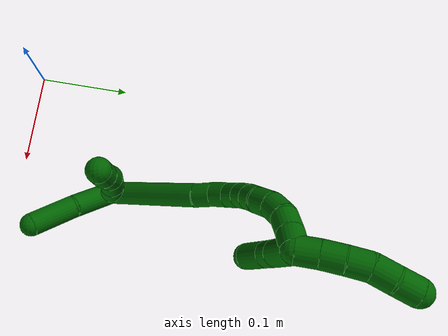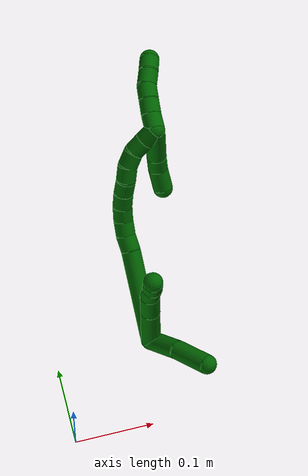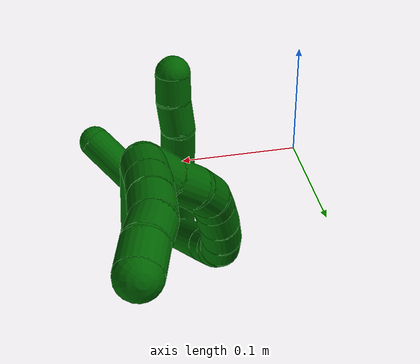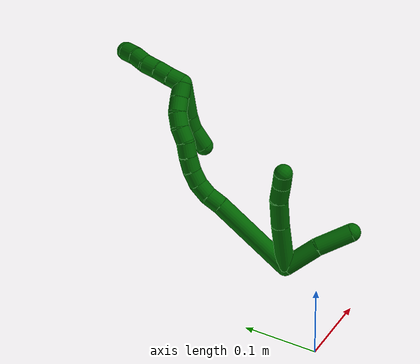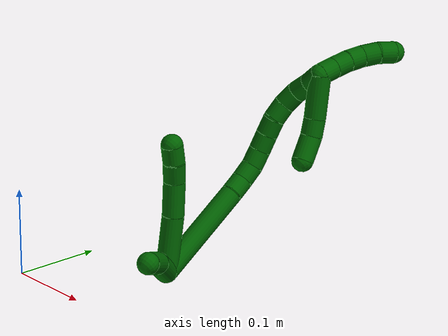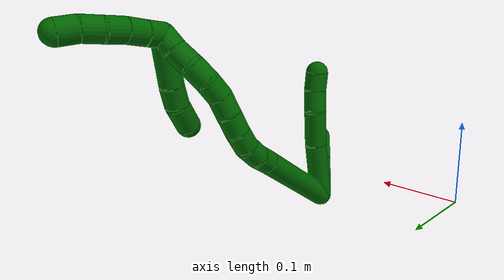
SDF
<sdf version="1.7">
 <world name="default">
  <model name="6">
   <static>0</static>
   <link name="6">
    <collision name="collision-cylinder-e_1_2_8">
     <pose>0.01232 -0.023528 0.019732 0.872918 0.381545 0.179682</pose>
     <geometry><cylinder><radius>0.0125</radius><length>0.066173</length></cylinder></geometry>
     <surface>
      <friction><ode><mu>1.16</mu><mu2>1.16</mu2><slip1>0</slip1><slip2>0</slip2></ode></friction>
      <contact><ode><kp>1e+06</kp><kd>1</kd><max_vel>0</max_vel><min_depth>0.001</min_depth></ode></contact>
     </surface>
    </collision>
    <visual name="visual-cylinder-e_1_2_8">
     <pose>0.01232 -0.023528 0.019732 0.872918 0.381545 0.179682</pose>
     <geometry><cylinder><radius>0.0125</radius><length>0.066173</length></cylinder></geometry>
     <material><ambient>0 0.392157 0.003922 1</ambient></material>
    </visual>
    <collision name="collision-cylinder-e_2_8_9">
     <pose>0.031758 -0.062312 0.050217 0.956822 0.36435 0.190489</pose>
     <geometry><cylinder><radius>0.0125</radius><length>0.039951</length></cylinder></geometry>
     <surface>
      <friction><ode><mu>1.16</mu><mu2>1.16</mu2><slip1>0</slip1><slip2>0</slip2></ode></friction>
      <contact><ode><kp>1e+06</kp><kd>1</kd><max_vel>0</max_vel><min_depth>0.001</min_depth></ode></contact>
     </surface>
    </collision>
    <visual name="visual-cylinder-e_2_8_9">
     <pose>0.031758 -0.062312 0.050217 0.956822 0.36435 0.190489</pose>
     <geometry><cylinder><radius>0.0125</radius><length>0.039951</length></cylinder></geometry>
     <material><ambient>0 0.392157 0.003922 1</ambient></material>
    </visual>
    <collision name="collision-cylinder-e_3_9_10">
     <pose>0.04456 -0.086821 0.065426 1.12204 0.505496 0.321775</pose>
     <geometry><cylinder><radius>0.0125</radius><length>0.023477</length></cylinder></geometry>
     <surface>
      <friction><ode><mu>1.16</mu><mu2>1.16</mu2><slip1>0</slip1><slip2>0</slip2></ode></friction>
      <contact><ode><kp>1e+06</kp><kd>1</kd><max_vel>0</max_vel><min_depth>0.001</min_depth></ode></contact>
     </surface>
    </collision>
    <visual name="visual-cylinder-e_3_9_10">
     <pose>0.04456 -0.086821 0.065426 1.12204 0.505496 0.321775</pose>
     <geometry><cylinder><radius>0.0125</radius><length>0.023477</length></cylinder></geometry>
     <material><ambient>0 0.392157 0.003922 1</ambient></material>
    </visual>
    <collision name="collision-cylinder-e_4_10_6">
     <pose>0.054022 -0.104751 0.073686 1.15758 0.379401 0.249629</pose>
     <geometry><cylinder><radius>0.0125</radius><length>0.020399</length></cylinder></geometry>
     <surface>
      <friction><ode><mu>1.16</mu><mu2>1.16</mu2><slip1>0</slip1><slip2>0</slip2></ode></friction>
      <contact><ode><kp>1e+06</kp><kd>1</kd><max_vel>0</max_vel><min_depth>0.001</min_depth></ode></contact>
     </surface>
    </collision>
    <visual name="visual-cylinder-e_4_10_6">
     <pose>0.054022 -0.104751 0.073686 1.15758 0.379401 0.249629</pose>
     <geometry><cylinder><radius>0.0125</radius><length>0.020399</length></cylinder></geometry>
     <material><ambient>0 0.392157 0.003922 1</ambient></material>
    </visual>
    <collision name="collision-cylinder-e_1_2_11">
     <pose>0.019348 -0.013926 -0.008762 2.13242 0.866089 1.39393</pose>
     <geometry><cylinder><radius>0.0125</radius><length>0.050796</length></cylinder></geometry>
     <surface>
      <friction><ode><mu>1.16</mu><mu2>1.16</mu2><slip1>0</slip1><slip2>0</slip2></ode></friction>
      <contact><ode><kp>1e+06</kp><kd>1</kd><max_vel>0</max_vel><min_depth>0.001</min_depth></ode></contact>
     </surface>
    </collision>
    <visual name="visual-cylinder-e_1_2_11">
     <pose>0.019348 -0.013926 -0.008762 2.13242 0.866089 1.39393</pose>
     <geometry><cylinder><radius>0.0125</radius><length>0.050796</length></cylinder></geometry>
     <material><ambient>0 0.392157 0.003922 1</ambient></material>
    </visual>
    <collision name="collision-cylinder-e_2_11_5">
     <pose>0.057438 -0.038009 -0.029806 2.45058 0.866062 1.81848</pose>
     <geometry><cylinder><radius>0.0125</radius><length>0.049204</length></cylinder></geometry>
     <surface>
      <friction><ode><mu>1.16</mu><mu2>1.16</mu2><slip1>0</slip1><slip2>0</slip2></ode></friction>
      <contact><ode><kp>1e+06</kp><kd>1</kd><max_vel>0</max_vel><min_depth>0.001</min_depth></ode></contact>
     </surface>
    </collision>
    <visual name="visual-cylinder-e_2_11_5">
     <pose>0.057438 -0.038009 -0.029806 2.45058 0.866062 1.81848</pose>
     <geometry><cylinder><radius>0.0125</radius><length>0.049204</length></cylinder></geometry>
     <material><ambient>0 0.392157 0.003922 1</ambient></material>
    </visual>
    <collision name="collision-cylinder-e_1_2_12">
     <pose>0.005368 -0.004571 0.058893 0.077454 0.090623 0.003514</pose>
     <geometry><cylinder><radius>0.0125</radius><length>0.118627</length></cylinder></geometry>
     <surface>
      <friction><ode><mu>1.16</mu><mu2>1.16</mu2><slip1>0</slip1><slip2>0</slip2></ode></friction>
      <contact><ode><kp>1e+06</kp><kd>1</kd><max_vel>0</max_vel><min_depth>0.001</min_depth></ode></contact>
     </surface>
    </collision>
    <visual name="visual-cylinder-e_1_2_12">
     <pose>0.005368 -0.004571 0.058893 0.077454 0.090623 0.003514</pose>
     <geometry><cylinder><radius>0.0125</radius><length>0.118627</length></cylinder></geometry>
     <material><ambient>0 0.392157 0.003922 1</ambient></material>
    </visual>
    <collision name="collision-cylinder-e_2_12_13">
     <pose>0.010592 -0.009808 0.128156 0.064229 -0.013852 -0.000445</pose>
     <geometry><cylinder><radius>0.0125</radius><length>0.020785</length></cylinder></geometry>
     <surface>
      <friction><ode><mu>1.16</mu><mu2>1.16</mu2><slip1>0</slip1><slip2>0</slip2></ode></friction>
      <contact><ode><kp>1e+06</kp><kd>1</kd><max_vel>0</max_vel><min_depth>0.001</min_depth></ode></contact>
     </surface>
    </collision>
    <visual name="visual-cylinder-e_2_12_13">
     <pose>0.010592 -0.009808 0.128156 0.064229 -0.013852 -0.000445</pose>
     <geometry><cylinder><radius>0.0125</radius><length>0.020785</length></cylinder></geometry>
     <material><ambient>0 0.392157 0.003922 1</ambient></material>
    </visual>
    <collision name="collision-cylinder-e_3_13_14">
     <pose>0.012241 -0.012292 0.148314 0.183509 0.178202 0.01644</pose>
     <geometry><cylinder><radius>0.0125</radius><length>0.02023</length></cylinder></geometry>
     <surface>
      <friction><ode><mu>1.16</mu><mu2>1.16</mu2><slip1>0</slip1><slip2>0</slip2></ode></friction>
      <contact><ode><kp>1e+06</kp><kd>1</kd><max_vel>0</max_vel><min_depth>0.001</min_depth></ode></contact>
     </surface>
    </collision>
    <visual name="visual-cylinder-e_3_13_14">
     <pose>0.012241 -0.012292 0.148314 0.183509 0.178202 0.01644</pose>
     <geometry><cylinder><radius>0.0125</radius><length>0.02023</length></cylinder></geometry>
     <material><ambient>0 0.392157 0.003922 1</ambient></material>
    </visual>
    <collision name="collision-cylinder-e_4_14_15">
     <pose>0.017271 -0.018276 0.166715 0.450611 0.32626 0.075413</pose>
     <geometry><cylinder><radius>0.0125</radius><length>0.020203</length></cylinder></geometry>
     <surface>
      <friction><ode><mu>1.16</mu><mu2>1.16</mu2><slip1>0</slip1><slip2>0</slip2></ode></friction>
      <contact><ode><kp>1e+06</kp><kd>1</kd><max_vel>0</max_vel><min_depth>0.001</min_depth></ode></contact>
     </surface>
    </collision>
    <visual name="visual-cylinder-e_4_14_15">
     <pose>0.017271 -0.018276 0.166715 0.450611 0.32626 0.075413</pose>
     <geometry><cylinder><radius>0.0125</radius><length>0.020203</length></cylinder></geometry>
     <material><ambient>0 0.392157 0.003922 1</ambient></material>
    </visual>
    <collision name="collision-cylinder-e_5_15_16">
     <pose>0.024995 -0.027205 0.182971 0.557233 0.462237 0.134429</pose>
     <geometry><cylinder><radius>0.0125</radius><length>0.020121</length></cylinder></geometry>
     <surface>
      <friction><ode><mu>1.16</mu><mu2>1.16</mu2><slip1>0</slip1><slip2>0</slip2></ode></friction>
      <contact><ode><kp>1e+06</kp><kd>1</kd><max_vel>0</max_vel><min_depth>0.001</min_depth></ode></contact>
     </surface>
    </collision>
    <visual name="visual-cylinder-e_5_15_16">
     <pose>0.024995 -0.027205 0.182971 0.557233 0.462237 0.134429</pose>
     <geometry><cylinder><radius>0.0125</radius><length>0.020121</length></cylinder></geometry>
     <material><ambient>0 0.392157 0.003922 1</ambient></material>
    </visual>
    <collision name="collision-cylinder-e_6_16_17">
     <pose>0.034723 -0.036755 0.197678 0.595697 0.550742 0.173041</pose>
     <geometry><cylinder><radius>0.0125</radius><length>0.020031</length></cylinder></geometry>
     <surface>
      <friction><ode><mu>1.16</mu><mu2>1.16</mu2><slip1>0</slip1><slip2>0</slip2></ode></friction>
      <contact><ode><kp>1e+06</kp><kd>1</kd><max_vel>0</max_vel><min_depth>0.001</min_depth></ode></contact>
     </surface>
    </collision>
    <visual name="visual-cylinder-e_6_16_17">
     <pose>0.034723 -0.036755 0.197678 0.595697 0.550742 0.173041</pose>
     <geometry><cylinder><radius>0.0125</radius><length>0.020031</length></cylinder></geometry>
     <material><ambient>0 0.392157 0.003922 1</ambient></material>
    </visual>
    <collision name="collision-cylinder-e_7_17_18">
     <pose>0.044512 -0.044275 0.21322 0.311616 0.472119 0.075534</pose>
     <geometry><cylinder><radius>0.0125</radius><length>0.020002</length></cylinder></geometry>
     <surface>
      <friction><ode><mu>1.16</mu><mu2>1.16</mu2><slip1>0</slip1><slip2>0</slip2></ode></friction>
      <contact><ode><kp>1e+06</kp><kd>1</kd><max_vel>0</max_vel><min_depth>0.001</min_depth></ode></contact>
     </surface>
    </collision>
    <visual name="visual-cylinder-e_7_17_18">
     <pose>0.044512 -0.044275 0.21322 0.311616 0.472119 0.075534</pose>
     <geometry><cylinder><radius>0.0125</radius><length>0.020002</length></cylinder></geometry>
     <material><ambient>0 0.392157 0.003922 1</ambient></material>
    </visual>
    <collision name="collision-cylinder-e_8_18_19">
     <pose>0.055784 -0.048699 0.228905 0.23073 0.737325 0.089475</pose>
     <geometry><cylinder><radius>0.0125</radius><length>0.020001</length></cylinder></geometry>
     <surface>
      <friction><ode><mu>1.16</mu><mu2>1.16</mu2><slip1>0</slip1><slip2>0</slip2></ode></friction>
      <contact><ode><kp>1e+06</kp><kd>1</kd><max_vel>0</max_vel><min_depth>0.001</min_depth></ode></contact>
     </surface>
    </collision>
    <visual name="visual-cylinder-e_8_18_19">
     <pose>0.055784 -0.048699 0.228905 0.23073 0.737325 0.089475</pose>
     <geometry><cylinder><radius>0.0125</radius><length>0.020001</length></cylinder></geometry>
     <material><ambient>0 0.392157 0.003922 1</ambient></material>
    </visual>
    <collision name="collision-cylinder-e_9_19_20">
     <pose>0.071273 -0.051157 0.240864 0.159661 1.06862 0.094606</pose>
     <geometry><cylinder><radius>0.0125</radius><length>0.020001</length></cylinder></geometry>
     <surface>
      <friction><ode><mu>1.16</mu><mu2>1.16</mu2><slip1>0</slip1><slip2>0</slip2></ode></friction>
      <contact><ode><kp>1e+06</kp><kd>1</kd><max_vel>0</max_vel><min_depth>0.001</min_depth></ode></contact>
     </surface>
    </collision>
    <visual name="visual-cylinder-e_9_19_20">
     <pose>0.071273 -0.051157 0.240864 0.159661 1.06862 0.094606</pose>
     <geometry><cylinder><radius>0.0125</radius><length>0.020001</length></cylinder></geometry>
     <material><ambient>0 0.392157 0.003922 1</ambient></material>
    </visual>
    <collision name="collision-cylinder-e_10_20_1">
     <pose>0.088951 -0.053817 0.249737 0.430946 1.10007 0.266808</pose>
     <geometry><cylinder><radius>0.0125</radius><length>0.02</length></cylinder></geometry>
     <surface>
      <friction><ode><mu>1.16</mu><mu2>1.16</mu2><slip1>0</slip1><slip2>0</slip2></ode></friction>
      <contact><ode><kp>1e+06</kp><kd>1</kd><max_vel>0</max_vel><min_depth>0.001</min_depth></ode></contact>
     </surface>
    </collision>
    <visual name="visual-cylinder-e_10_20_1">
     <pose>0.088951 -0.053817 0.249737 0.430946 1.10007 0.266808</pose>
     <geometry><cylinder><radius>0.0125</radius><length>0.02</length></cylinder></geometry>
     <material><ambient>0 0.392157 0.003922 1</ambient></material>
    </visual>
    <collision name="collision-cylinder-e_1_1_21">
     <pose>0.097424 -0.052541 0.263332 -0.322879 -0.043951 0.007159</pose>
     <geometry><cylinder><radius>0.0125</radius><length>0.02</length></cylinder></geometry>
     <surface>
      <friction><ode><mu>1.16</mu><mu2>1.16</mu2><slip1>0</slip1><slip2>0</slip2></ode></friction>
      <contact><ode><kp>1e+06</kp><kd>1</kd><max_vel>0</max_vel><min_depth>0.001</min_depth></ode></contact>
     </surface>
    </collision>
    <visual name="visual-cylinder-e_1_1_21">
     <pose>0.097424 -0.052541 0.263332 -0.322879 -0.043951 0.007159</pose>
     <geometry><cylinder><radius>0.0125</radius><length>0.02</length></cylinder></geometry>
     <material><ambient>0 0.392157 0.003922 1</ambient></material>
    </visual>
    <collision name="collision-cylinder-e_2_21_22">
     <pose>0.097234 -0.046035 0.28223 -0.340226 0.024975 -0.00429</pose>
     <geometry><cylinder><radius>0.0125</radius><length>0.02</length></cylinder></geometry>
     <surface>
      <friction><ode><mu>1.16</mu><mu2>1.16</mu2><slip1>0</slip1><slip2>0</slip2></ode></friction>
      <contact><ode><kp>1e+06</kp><kd>1</kd><max_vel>0</max_vel><min_depth>0.001</min_depth></ode></contact>
     </surface>
    </collision>
    <visual name="visual-cylinder-e_2_21_22">
     <pose>0.097234 -0.046035 0.28223 -0.340226 0.024975 -0.00429</pose>
     <geometry><cylinder><radius>0.0125</radius><length>0.02</length></cylinder></geometry>
     <material><ambient>0 0.392157 0.003922 1</ambient></material>
    </visual>
    <collision name="collision-cylinder-e_3_22_23">
     <pose>0.097547 -0.038437 0.300699 -0.440383 0.006286 -0.001407</pose>
     <geometry><cylinder><radius>0.0125</radius><length>0.02</length></cylinder></geometry>
     <surface>
      <friction><ode><mu>1.16</mu><mu2>1.16</mu2><slip1>0</slip1><slip2>0</slip2></ode></friction>
      <contact><ode><kp>1e+06</kp><kd>1</kd><max_vel>0</max_vel><min_depth>0.001</min_depth></ode></contact>
     </surface>
    </collision>
    <visual name="visual-cylinder-e_3_22_23">
     <pose>0.097547 -0.038437 0.300699 -0.440383 0.006286 -0.001407</pose>
     <geometry><cylinder><radius>0.0125</radius><length>0.02</length></cylinder></geometry>
     <material><ambient>0 0.392157 0.003922 1</ambient></material>
    </visual>
    <collision name="collision-cylinder-e_4_23_24">
     <pose>0.099915 -0.029186 0.3181 -0.538243 0.232571 -0.064414</pose>
     <geometry><cylinder><radius>0.0125</radius><length>0.02</length></cylinder></geometry>
     <surface>
      <friction><ode><mu>1.16</mu><mu2>1.16</mu2><slip1>0</slip1><slip2>0</slip2></ode></friction>
      <contact><ode><kp>1e+06</kp><kd>1</kd><max_vel>0</max_vel><min_depth>0.001</min_depth></ode></contact>
     </surface>
    </collision>
    <visual name="visual-cylinder-e_4_23_24">
     <pose>0.099915 -0.029186 0.3181 -0.538243 0.232571 -0.064414</pose>
     <geometry><cylinder><radius>0.0125</radius><length>0.02</length></cylinder></geometry>
     <material><ambient>0 0.392157 0.003922 1</ambient></material>
    </visual>
    <collision name="collision-cylinder-e_5_24_4">
     <pose>0.10344 -0.017851 0.334086 -0.69372 0.122324 -0.044265</pose>
     <geometry><cylinder><radius>0.0125</radius><length>0.02</length></cylinder></geometry>
     <surface>
      <friction><ode><mu>1.16</mu><mu2>1.16</mu2><slip1>0</slip1><slip2>0</slip2></ode></friction>
      <contact><ode><kp>1e+06</kp><kd>1</kd><max_vel>0</max_vel><min_depth>0.001</min_depth></ode></contact>
     </surface>
    </collision>
    <visual name="visual-cylinder-e_5_24_4">
     <pose>0.10344 -0.017851 0.334086 -0.69372 0.122324 -0.044265</pose>
     <geometry><cylinder><radius>0.0125</radius><length>0.02</length></cylinder></geometry>
     <material><ambient>0 0.392157 0.003922 1</ambient></material>
    </visual>
    <collision name="collision-cylinder-e_1_1_25">
     <pose>0.089375 -0.037927 0.238622 -2.27918 -0.347734 0.72937</pose>
     <geometry><cylinder><radius>0.0125</radius><length>0.049818</length></cylinder></geometry>
     <surface>
      <friction><ode><mu>1.16</mu><mu2>1.16</mu2><slip1>0</slip1><slip2>0</slip2></ode></friction>
      <contact><ode><kp>1e+06</kp><kd>1</kd><max_vel>0</max_vel><min_depth>0.001</min_depth></ode></contact>
     </surface>
    </collision>
    <visual name="visual-cylinder-e_1_1_25">
     <pose>0.089375 -0.037927 0.238622 -2.27918 -0.347734 0.72937</pose>
     <geometry><cylinder><radius>0.0125</radius><length>0.049818</length></cylinder></geometry>
     <material><ambient>0 0.392157 0.003922 1</ambient></material>
    </visual>
    <collision name="collision-cylinder-e_2_25_26">
     <pose>0.077754 -0.013365 0.21601 -2.39834 -0.303101 0.746933</pose>
     <geometry><cylinder><radius>0.0125</radius><length>0.020991</length></cylinder></geometry>
     <surface>
      <friction><ode><mu>1.16</mu><mu2>1.16</mu2><slip1>0</slip1><slip2>0</slip2></ode></friction>
      <contact><ode><kp>1e+06</kp><kd>1</kd><max_vel>0</max_vel><min_depth>0.001</min_depth></ode></contact>
     </surface>
    </collision>
    <visual name="visual-cylinder-e_2_25_26">
     <pose>0.077754 -0.013365 0.21601 -2.39834 -0.303101 0.746933</pose>
     <geometry><cylinder><radius>0.0125</radius><length>0.020991</length></cylinder></geometry>
     <material><ambient>0 0.392157 0.003922 1</ambient></material>
    </visual>
    <collision name="collision-cylinder-e_3_26_3">
     <pose>0.072445 -2e-06 0.195792 -2.66786 -0.149686 0.602336</pose>
     <geometry><cylinder><radius>0.0125</radius><length>0.029191</length></cylinder></geometry>
     <surface>
      <friction><ode><mu>1.16</mu><mu2>1.16</mu2><slip1>0</slip1><slip2>0</slip2></ode></friction>
      <contact><ode><kp>1e+06</kp><kd>1</kd><max_vel>0</max_vel><min_depth>0.001</min_depth></ode></contact>
     </surface>
    </collision>
    <visual name="visual-cylinder-e_3_26_3">
     <pose>0.072445 -2e-06 0.195792 -2.66786 -0.149686 0.602336</pose>
     <geometry><cylinder><radius>0.0125</radius><length>0.029191</length></cylinder></geometry>
     <material><ambient>0 0.392157 0.003922 1</ambient></material>
    </visual>
    <collision name="collision-sphere-3">
     <pose>0.070269 0.006582 0.182949 0 -0 0</pose>
     <geometry><sphere><radius>0.0125</radius></sphere></geometry>
     <surface>
      <friction><ode><mu>1.16</mu><mu2>1.16</mu2><slip1>0</slip1><slip2>0</slip2></ode></friction>
      <contact><ode><kp>1e+06</kp><kd>1</kd><max_vel>0</max_vel><min_depth>0.001</min_depth></ode></contact>
     </surface>
    </collision>
    <visual name="visual-sphere-3">
     <pose>0.070269 0.006582 0.182949 0 -0 0</pose>
     <geometry><sphere><radius>0.0125</radius></sphere></geometry>
     <material><ambient>0 0.392157 0.003922 1</ambient></material>
    </visual>
    <collision name="collision-sphere-26">
     <pose>0.074622 -0.006586 0.208635 0 -0 0</pose>
     <geometry><sphere><radius>0.0125</radius></sphere></geometry>
     <surface>
      <friction><ode><mu>1.16</mu><mu2>1.16</mu2><slip1>0</slip1><slip2>0</slip2></ode></friction>
      <contact><ode><kp>1e+06</kp><kd>1</kd><max_vel>0</max_vel><min_depth>0.001</min_depth></ode></contact>
     </surface>
    </collision>
    <visual name="visual-sphere-26">
     <pose>0.074622 -0.006586 0.208635 0 -0 0</pose>
     <geometry><sphere><radius>0.0125</radius></sphere></geometry>
     <material><ambient>0 0.392157 0.003922 1</ambient></material>
    </visual>
    <collision name="collision-sphere-25">
     <pose>0.080887 -0.020143 0.223386 0 -0 0</pose>
     <geometry><sphere><radius>0.0125</radius></sphere></geometry>
     <surface>
      <friction><ode><mu>1.16</mu><mu2>1.16</mu2><slip1>0</slip1><slip2>0</slip2></ode></friction>
      <contact><ode><kp>1e+06</kp><kd>1</kd><max_vel>0</max_vel><min_depth>0.001</min_depth></ode></contact>
     </surface>
    </collision>
    <visual name="visual-sphere-25">
     <pose>0.080887 -0.020143 0.223386 0 -0 0</pose>
     <geometry><sphere><radius>0.0125</radius></sphere></geometry>
     <material><ambient>0 0.392157 0.003922 1</ambient></material>
    </visual>
    <collision name="collision-sphere-4">
     <pose>0.10466 -0.011505 0.341717 0 -0 0</pose>
     <geometry><sphere><radius>0.0125</radius></sphere></geometry>
     <surface>
      <friction><ode><mu>1.16</mu><mu2>1.16</mu2><slip1>0</slip1><slip2>0</slip2></ode></friction>
      <contact><ode><kp>1e+06</kp><kd>1</kd><max_vel>0</max_vel><min_depth>0.001</min_depth></ode></contact>
     </surface>
    </collision>
    <visual name="visual-sphere-4">
     <pose>0.10466 -0.011505 0.341717 0 -0 0</pose>
     <geometry><sphere><radius>0.0125</radius></sphere></geometry>
     <material><ambient>0 0.392157 0.003922 1</ambient></material>
    </visual>
    <collision name="collision-sphere-24">
     <pose>0.10222 -0.024197 0.326455 0 -0 0</pose>
     <geometry><sphere><radius>0.0125</radius></sphere></geometry>
     <surface>
      <friction><ode><mu>1.16</mu><mu2>1.16</mu2><slip1>0</slip1><slip2>0</slip2></ode></friction>
      <contact><ode><kp>1e+06</kp><kd>1</kd><max_vel>0</max_vel><min_depth>0.001</min_depth></ode></contact>
     </surface>
    </collision>
    <visual name="visual-sphere-24">
     <pose>0.10222 -0.024197 0.326455 0 -0 0</pose>
     <geometry><sphere><radius>0.0125</radius></sphere></geometry>
     <material><ambient>0 0.392157 0.003922 1</ambient></material>
    </visual>
    <collision name="collision-sphere-23">
     <pose>0.09761 -0.034174 0.309745 0 -0 0</pose>
     <geometry><sphere><radius>0.0125</radius></sphere></geometry>
     <surface>
      <friction><ode><mu>1.16</mu><mu2>1.16</mu2><slip1>0</slip1><slip2>0</slip2></ode></friction>
      <contact><ode><kp>1e+06</kp><kd>1</kd><max_vel>0</max_vel><min_depth>0.001</min_depth></ode></contact>
     </surface>
    </collision>
    <visual name="visual-sphere-23">
     <pose>0.09761 -0.034174 0.309745 0 -0 0</pose>
     <geometry><sphere><radius>0.0125</radius></sphere></geometry>
     <material><ambient>0 0.392157 0.003922 1</ambient></material>
    </visual>
    <collision name="collision-sphere-22">
     <pose>0.097484 -0.042699 0.291654 0 -0 0</pose>
     <geometry><sphere><radius>0.0125</radius></sphere></geometry>
     <surface>
      <friction><ode><mu>1.16</mu><mu2>1.16</mu2><slip1>0</slip1><slip2>0</slip2></ode></friction>
      <contact><ode><kp>1e+06</kp><kd>1</kd><max_vel>0</max_vel><min_depth>0.001</min_depth></ode></contact>
     </surface>
    </collision>
    <visual name="visual-sphere-22">
     <pose>0.097484 -0.042699 0.291654 0 -0 0</pose>
     <geometry><sphere><radius>0.0125</radius></sphere></geometry>
     <material><ambient>0 0.392157 0.003922 1</ambient></material>
    </visual>
    <collision name="collision-sphere-21">
     <pose>0.096985 -0.049371 0.272806 0 -0 0</pose>
     <geometry><sphere><radius>0.0125</radius></sphere></geometry>
     <surface>
      <friction><ode><mu>1.16</mu><mu2>1.16</mu2><slip1>0</slip1><slip2>0</slip2></ode></friction>
      <contact><ode><kp>1e+06</kp><kd>1</kd><max_vel>0</max_vel><min_depth>0.001</min_depth></ode></contact>
     </surface>
    </collision>
    <visual name="visual-sphere-21">
     <pose>0.096985 -0.049371 0.272806 0 -0 0</pose>
     <geometry><sphere><radius>0.0125</radius></sphere></geometry>
     <material><ambient>0 0.392157 0.003922 1</ambient></material>
    </visual>
    <collision name="collision-sphere-1">
     <pose>0.097863 -0.055711 0.253858 0 -0 0</pose>
     <geometry><sphere><radius>0.0125</radius></sphere></geometry>
     <surface>
      <friction><ode><mu>1.16</mu><mu2>1.16</mu2><slip1>0</slip1><slip2>0</slip2></ode></friction>
      <contact><ode><kp>1e+06</kp><kd>1</kd><max_vel>0</max_vel><min_depth>0.001</min_depth></ode></contact>
     </surface>
    </collision>
    <visual name="visual-sphere-1">
     <pose>0.097863 -0.055711 0.253858 0 -0 0</pose>
     <geometry><sphere><radius>0.0125</radius></sphere></geometry>
     <material><ambient>0 0.392157 0.003922 1</ambient></material>
    </visual>
    <collision name="collision-sphere-11">
     <pose>0.038697 -0.027852 -0.017525 0 -0 0</pose>
     <geometry><sphere><radius>0.0125</radius></sphere></geometry>
     <surface>
      <friction><ode><mu>1.16</mu><mu2>1.16</mu2><slip1>0</slip1><slip2>0</slip2></ode></friction>
      <contact><ode><kp>1e+06</kp><kd>1</kd><max_vel>0</max_vel><min_depth>0.001</min_depth></ode></contact>
     </surface>
    </collision>
    <visual name="visual-sphere-11">
     <pose>0.038697 -0.027852 -0.017525 0 -0 0</pose>
     <geometry><sphere><radius>0.0125</radius></sphere></geometry>
     <material><ambient>0 0.392157 0.003922 1</ambient></material>
    </visual>
    <collision name="collision-sphere-6">
     <pose>0.0578 -0.113428 0.077491 0 -0 0</pose>
     <geometry><sphere><radius>0.0125</radius></sphere></geometry>
     <surface>
      <friction><ode><mu>1.16</mu><mu2>1.16</mu2><slip1>0</slip1><slip2>0</slip2></ode></friction>
      <contact><ode><kp>1e+06</kp><kd>1</kd><max_vel>0</max_vel><min_depth>0.001</min_depth></ode></contact>
     </surface>
    </collision>
    <visual name="visual-sphere-6">
     <pose>0.0578 -0.113428 0.077491 0 -0 0</pose>
     <geometry><sphere><radius>0.0125</radius></sphere></geometry>
     <material><ambient>0 0.392157 0.003922 1</ambient></material>
    </visual>
    <collision name="collision-sphere-10">
     <pose>0.050245 -0.096074 0.069882 0 -0 0</pose>
     <geometry><sphere><radius>0.0125</radius></sphere></geometry>
     <surface>
      <friction><ode><mu>1.16</mu><mu2>1.16</mu2><slip1>0</slip1><slip2>0</slip2></ode></friction>
      <contact><ode><kp>1e+06</kp><kd>1</kd><max_vel>0</max_vel><min_depth>0.001</min_depth></ode></contact>
     </surface>
    </collision>
    <visual name="visual-sphere-10">
     <pose>0.050245 -0.096074 0.069882 0 -0 0</pose>
     <geometry><sphere><radius>0.0125</radius></sphere></geometry>
     <material><ambient>0 0.392157 0.003922 1</ambient></material>
    </visual>
    <collision name="collision-sphere-9">
     <pose>0.038876 -0.077567 0.06097 0 -0 0</pose>
     <geometry><sphere><radius>0.0125</radius></sphere></geometry>
     <surface>
      <friction><ode><mu>1.16</mu><mu2>1.16</mu2><slip1>0</slip1><slip2>0</slip2></ode></friction>
      <contact><ode><kp>1e+06</kp><kd>1</kd><max_vel>0</max_vel><min_depth>0.001</min_depth></ode></contact>
     </surface>
    </collision>
    <visual name="visual-sphere-9">
     <pose>0.038876 -0.077567 0.06097 0 -0 0</pose>
     <geometry><sphere><radius>0.0125</radius></sphere></geometry>
     <material><ambient>0 0.392157 0.003922 1</ambient></material>
    </visual>
    <collision name="collision-sphere-2">
     <geometry><sphere><radius>0.0125</radius></sphere></geometry>
     <surface>
      <friction><ode><mu>1.16</mu><mu2>1.16</mu2><slip1>0</slip1><slip2>0</slip2></ode></friction>
      <contact><ode><kp>1e+06</kp><kd>1</kd><max_vel>0</max_vel><min_depth>0.001</min_depth></ode></contact>
     </surface>
    </collision>
    <visual name="visual-sphere-2">
     <geometry><sphere><radius>0.0125</radius></sphere></geometry>
     <material><ambient>0 0.392157 0.003922 1</ambient></material>
    </visual>
    <collision name="collision-sphere-19">
     <pose>0.062507 -0.050392 0.236112 0 -0 0</pose>
     <geometry><sphere><radius>0.0125</radius></sphere></geometry>
     <surface>
      <friction><ode><mu>1.16</mu><mu2>1.16</mu2><slip1>0</slip1><slip2>0</slip2></ode></friction>
      <contact><ode><kp>1e+06</kp><kd>1</kd><max_vel>0</max_vel><min_depth>0.001</min_depth></ode></contact>
     </surface>
    </collision>
    <visual name="visual-sphere-19">
     <pose>0.062507 -0.050392 0.236112 0 -0 0</pose>
     <geometry><sphere><radius>0.0125</radius></sphere></geometry>
     <material><ambient>0 0.392157 0.003922 1</ambient></material>
    </visual>
    <collision name="collision-sphere-8">
     <pose>0.02464 -0.047056 0.039465 0 -0 0</pose>
     <geometry><sphere><radius>0.0125</radius></sphere></geometry>
     <surface>
      <friction><ode><mu>1.16</mu><mu2>1.16</mu2><slip1>0</slip1><slip2>0</slip2></ode></friction>
      <contact><ode><kp>1e+06</kp><kd>1</kd><max_vel>0</max_vel><min_depth>0.001</min_depth></ode></contact>
     </surface>
    </collision>
    <visual name="visual-sphere-8">
     <pose>0.02464 -0.047056 0.039465 0 -0 0</pose>
     <geometry><sphere><radius>0.0125</radius></sphere></geometry>
     <material><ambient>0 0.392157 0.003922 1</ambient></material>
    </visual>
    <collision name="collision-sphere-5">
     <pose>0.076179 -0.048167 -0.042088 0 -0 0</pose>
     <geometry><sphere><radius>0.0125</radius></sphere></geometry>
     <surface>
      <friction><ode><mu>1.16</mu><mu2>1.16</mu2><slip1>0</slip1><slip2>0</slip2></ode></friction>
      <contact><ode><kp>1e+06</kp><kd>1</kd><max_vel>0</max_vel><min_depth>0.001</min_depth></ode></contact>
     </surface>
    </collision>
    <visual name="visual-sphere-5">
     <pose>0.076179 -0.048167 -0.042088 0 -0 0</pose>
     <geometry><sphere><radius>0.0125</radius></sphere></geometry>
     <material><ambient>0 0.392157 0.003922 1</ambient></material>
    </visual>
    <collision name="collision-sphere-12">
     <pose>0.010736 -0.009141 0.117786 0 -0 0</pose>
     <geometry><sphere><radius>0.0125</radius></sphere></geometry>
     <surface>
      <friction><ode><mu>1.16</mu><mu2>1.16</mu2><slip1>0</slip1><slip2>0</slip2></ode></friction>
      <contact><ode><kp>1e+06</kp><kd>1</kd><max_vel>0</max_vel><min_depth>0.001</min_depth></ode></contact>
     </surface>
    </collision>
    <visual name="visual-sphere-12">
     <pose>0.010736 -0.009141 0.117786 0 -0 0</pose>
     <geometry><sphere><radius>0.0125</radius></sphere></geometry>
     <material><ambient>0 0.392157 0.003922 1</ambient></material>
    </visual>
    <collision name="collision-sphere-13">
     <pose>0.010448 -0.010475 0.138527 0 -0 0</pose>
     <geometry><sphere><radius>0.0125</radius></sphere></geometry>
     <surface>
      <friction><ode><mu>1.16</mu><mu2>1.16</mu2><slip1>0</slip1><slip2>0</slip2></ode></friction>
      <contact><ode><kp>1e+06</kp><kd>1</kd><max_vel>0</max_vel><min_depth>0.001</min_depth></ode></contact>
     </surface>
    </collision>
    <visual name="visual-sphere-13">
     <pose>0.010448 -0.010475 0.138527 0 -0 0</pose>
     <geometry><sphere><radius>0.0125</radius></sphere></geometry>
     <material><ambient>0 0.392157 0.003922 1</ambient></material>
    </visual>
    <collision name="collision-sphere-14">
     <pose>0.014034 -0.014108 0.158102 0 -0 0</pose>
     <geometry><sphere><radius>0.0125</radius></sphere></geometry>
     <surface>
      <friction><ode><mu>1.16</mu><mu2>1.16</mu2><slip1>0</slip1><slip2>0</slip2></ode></friction>
      <contact><ode><kp>1e+06</kp><kd>1</kd><max_vel>0</max_vel><min_depth>0.001</min_depth></ode></contact>
     </surface>
    </collision>
    <visual name="visual-sphere-14">
     <pose>0.014034 -0.014108 0.158102 0 -0 0</pose>
     <geometry><sphere><radius>0.0125</radius></sphere></geometry>
     <material><ambient>0 0.392157 0.003922 1</ambient></material>
    </visual>
    <collision name="collision-sphere-15">
     <pose>0.020509 -0.022443 0.175329 0 -0 0</pose>
     <geometry><sphere><radius>0.0125</radius></sphere></geometry>
     <surface>
      <friction><ode><mu>1.16</mu><mu2>1.16</mu2><slip1>0</slip1><slip2>0</slip2></ode></friction>
      <contact><ode><kp>1e+06</kp><kd>1</kd><max_vel>0</max_vel><min_depth>0.001</min_depth></ode></contact>
     </surface>
    </collision>
    <visual name="visual-sphere-15">
     <pose>0.020509 -0.022443 0.175329 0 -0 0</pose>
     <geometry><sphere><radius>0.0125</radius></sphere></geometry>
     <material><ambient>0 0.392157 0.003922 1</ambient></material>
    </visual>
    <collision name="collision-sphere-16">
     <pose>0.029482 -0.031967 0.190614 0 -0 0</pose>
     <geometry><sphere><radius>0.0125</radius></sphere></geometry>
     <surface>
      <friction><ode><mu>1.16</mu><mu2>1.16</mu2><slip1>0</slip1><slip2>0</slip2></ode></friction>
      <contact><ode><kp>1e+06</kp><kd>1</kd><max_vel>0</max_vel><min_depth>0.001</min_depth></ode></contact>
     </surface>
    </collision>
    <visual name="visual-sphere-16">
     <pose>0.029482 -0.031967 0.190614 0 -0 0</pose>
     <geometry><sphere><radius>0.0125</radius></sphere></geometry>
     <material><ambient>0 0.392157 0.003922 1</ambient></material>
    </visual>
    <collision name="collision-sphere-17">
     <pose>0.039964 -0.041544 0.204742 0 -0 0</pose>
     <geometry><sphere><radius>0.0125</radius></sphere></geometry>
     <surface>
      <friction><ode><mu>1.16</mu><mu2>1.16</mu2><slip1>0</slip1><slip2>0</slip2></ode></friction>
      <contact><ode><kp>1e+06</kp><kd>1</kd><max_vel>0</max_vel><min_depth>0.001</min_depth></ode></contact>
     </surface>
    </collision>
    <visual name="visual-sphere-17">
     <pose>0.039964 -0.041544 0.204742 0 -0 0</pose>
     <geometry><sphere><radius>0.0125</radius></sphere></geometry>
     <material><ambient>0 0.392157 0.003922 1</ambient></material>
    </visual>
    <collision name="collision-sphere-18">
     <pose>0.04906 -0.047006 0.221698 0 -0 0</pose>
     <geometry><sphere><radius>0.0125</radius></sphere></geometry>
     <surface>
      <friction><ode><mu>1.16</mu><mu2>1.16</mu2><slip1>0</slip1><slip2>0</slip2></ode></friction>
      <contact><ode><kp>1e+06</kp><kd>1</kd><max_vel>0</max_vel><min_depth>0.001</min_depth></ode></contact>
     </surface>
    </collision>
    <visual name="visual-sphere-18">
     <pose>0.04906 -0.047006 0.221698 0 -0 0</pose>
     <geometry><sphere><radius>0.0125</radius></sphere></geometry>
     <material><ambient>0 0.392157 0.003922 1</ambient></material>
    </visual>
    <collision name="collision-sphere-20">
     <pose>0.080039 -0.051922 0.245616 0 -0 0</pose>
     <geometry><sphere><radius>0.0125</radius></sphere></geometry>
     <surface>
      <friction><ode><mu>1.16</mu><mu2>1.16</mu2><slip1>0</slip1><slip2>0</slip2></ode></friction>
      <contact><ode><kp>1e+06</kp><kd>1</kd><max_vel>0</max_vel><min_depth>0.001</min_depth></ode></contact>
     </surface>
    </collision>
    <visual name="visual-sphere-20">
     <pose>0.080039 -0.051922 0.245616 0 -0 0</pose>
     <geometry><sphere><radius>0.0125</radius></sphere></geometry>
     <material><ambient>0 0.392157 0.003922 1</ambient></material>
    </visual>
    <inertial>
     <pose>0.045352 -0.031009 0.131814 0 -0 0</pose>
     <mass>0.75</mass>
     <inertia><ixx>0.000257</ixx><ixy>0</ixy><ixz>0</ixz><iyy>0.00022</iyy><iyz>0</iyz><izz>1.6e-05</izz></inertia>
    </inertial>
   </link>
   <pose>0.123604 0.10813 0.011492 -1.02275 -0.385392 -0.144382</pose>
  </model>
 </world>
</sdf>
